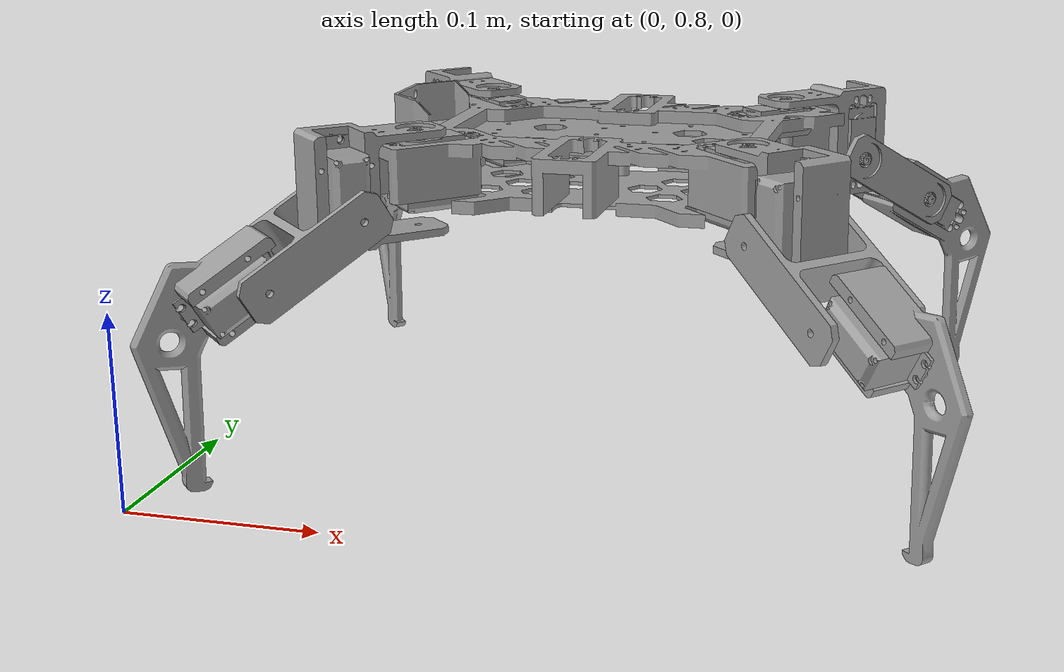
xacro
<?xml version="1.0"?>
<robot xmlns:xacro="http://www.ros.org/wiki/xacro" name="MAGI_Assembly_URDF">

  <!-- Materials (shared across all assemblies) -->
  <material name="Steel">
    <color rgba="0.627 0.627 0.627 1.0"/>
  </material>

  <!-- Assembly includes -->
  <xacro:include filename="$(find MAGI_Assembly_URDF_description)/urdf/assemblies/MAGI_Assembly_URDF.urdf.xacro"/>

  <!-- Instantiate assemblies -->
  <xacro:MAGI_Assembly_URDF prefix=""/>

</robot>

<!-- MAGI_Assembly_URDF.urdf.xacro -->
<robot xmlns:xacro="http://www.ros.org/wiki/xacro" name="MAGI_Assembly_URDF_macro">

  <xacro:macro name="MAGI_Assembly_URDF" params="prefix">

    <!-- Links -->
    <link name="${prefix}base_link">
      <inertial>
        <origin xyz="0.188950 1.012566 0.124814" rpy="0 0 0"/>
        <mass value="0.461432"/>
        <inertia ixx="7.929840e-04" ixy="8.295237e-08" ixz="1.419208e-06"
                 iyy="1.825252e-03" iyz="-2.865923e-08" izz="2.601024e-03"/>
      </inertial>
      <visual>
        <origin xyz="0.000000 0.000000 0.000000" rpy="0.000000 0.000000 0.000000"/>
        <geometry>
          <mesh filename="package://MAGI_Assembly_URDF_description/meshes/MAGI_Assembly_URDF/base_link.dae" scale="1 1 1"/>
        </geometry>
        <material name="Steel"/>
      </visual>
      <collision>
        <origin xyz="0.000000 0.000000 0.000000" rpy="0.000000 0.000000 0.000000"/>
        <geometry>
          <mesh filename="package://MAGI_Assembly_URDF_description/meshes/MAGI_Assembly_URDF/base_link_collision.stl" scale="0.01 0.01 0.01"/>
        </geometry>
      </collision>
    </link>

    <link name="${prefix}HexapodV3Mid">
      <inertial>
        <origin xyz="0.056935 -0.338657 0.392833" rpy="0 0 0"/>
        <mass value="0.430715"/>
        <inertia ixx="3.691505e-04" ixy="9.189307e-07" ixz="3.260568e-05"
                 iyy="1.624727e-03" iyz="1.642784e-08" izz="1.982639e-03"/>
      </inertial>
      <visual>
        <origin xyz="0.000000 0.000000 0.000000" rpy="0.000000 0.000000 0.000000"/>
        <geometry>
          <mesh filename="package://MAGI_Assembly_URDF_description/meshes/MAGI_Assembly_URDF/HexapodV3Mid.dae" scale="1 1 1"/>
        </geometry>
        <material name="Steel"/>
      </visual>
      <collision>
        <origin xyz="0.000000 0.000000 0.000000" rpy="0.000000 0.000000 0.000000"/>
        <geometry>
          <mesh filename="package://MAGI_Assembly_URDF_description/meshes/MAGI_Assembly_URDF/HexapodV3Mid_collision.stl" scale="0.01 0.01 0.01"/>
        </geometry>
      </collision>
    </link>

    <link name="${prefix}HexapodV3Top">
      <inertial>
        <origin xyz="0.148577 2.513000 0.237965" rpy="0 0 0"/>
        <mass value="1.329055"/>
        <inertia ixx="5.538158e-03" ixy="1.518249e-06" ixz="8.338057e-06"
                 iyy="6.473322e-03" iyz="-5.310300e-07" izz="1.181787e-02"/>
      </inertial>
      <visual>
        <origin xyz="0.000000 0.000000 0.000000" rpy="0.000000 0.000000 0.000000"/>
        <geometry>
          <mesh filename="package://MAGI_Assembly_URDF_description/meshes/MAGI_Assembly_URDF/HexapodV3Top.dae" scale="1 1 1"/>
        </geometry>
        <material name="Steel"/>
      </visual>
      <collision>
        <origin xyz="0.000000 0.000000 0.000000" rpy="0.000000 0.000000 0.000000"/>
        <geometry>
          <mesh filename="package://MAGI_Assembly_URDF_description/meshes/MAGI_Assembly_URDF/HexapodV3Top_collision.stl" scale="0.01 0.01 0.01"/>
        </geometry>
      </collision>
    </link>

    <link name="${prefix}MAGI_Assembly_URDF_MG996R_servo">
      <inertial>
        <origin xyz="0.020183 0.019509 0.000018" rpy="0 0 0"/>
        <mass value="0.240073"/>
        <inertia ixx="3.608015e-05" ixy="6.266312e-07" ixz="4.838323e-08"
                 iyy="4.048873e-05" iyz="-8.607661e-08" izz="6.116593e-05"/>
      </inertial>
      <visual>
        <origin xyz="0.000000 0.000000 0.000000" rpy="0.000000 0.000000 0.000000"/>
        <geometry>
          <mesh filename="package://MAGI_Assembly_URDF_description/meshes/MAGI_Assembly_URDF/MAGI_Assembly_URDF_MG996R_servo.dae" scale="1 1 1"/>
        </geometry>
        <material name="Steel"/>
      </visual>
      <collision>
        <origin xyz="0.000000 0.000000 0.000000" rpy="0.000000 0.000000 0.000000"/>
        <geometry>
          <mesh filename="package://MAGI_Assembly_URDF_description/meshes/MAGI_Assembly_URDF/MAGI_Assembly_URDF_MG996R_servo_collision.stl" scale="0.01 0.01 0.01"/>
        </geometry>
      </collision>
    </link>

    <link name="${prefix}MAGI_Assembly_URDF_MG996R_servo_9">
      <inertial>
        <origin xyz="0.020183 0.019509 0.000018" rpy="0 0 0"/>
        <mass value="0.240073"/>
        <inertia ixx="3.608015e-05" ixy="6.266312e-07" ixz="4.838323e-08"
                 iyy="4.048873e-05" iyz="-8.607661e-08" izz="6.116593e-05"/>
      </inertial>
      <visual>
        <origin xyz="0.000000 0.000000 0.000000" rpy="0.000000 0.000000 0.000000"/>
        <geometry>
          <mesh filename="package://MAGI_Assembly_URDF_description/meshes/MAGI_Assembly_URDF/MAGI_Assembly_URDF_MG996R_servo_9.dae" scale="1 1 1"/>
        </geometry>
        <material name="Steel"/>
      </visual>
      <collision>
        <origin xyz="0.000000 0.000000 0.000000" rpy="0.000000 0.000000 0.000000"/>
        <geometry>
          <mesh filename="package://MAGI_Assembly_URDF_description/meshes/MAGI_Assembly_URDF/MAGI_Assembly_URDF_MG996R_servo_9_collision.stl" scale="0.01 0.01 0.01"/>
        </geometry>
      </collision>
    </link>

    <link name="${prefix}MAGI_Assembly_URDF_MG996R_servo_12">
      <inertial>
        <origin xyz="0.020183 0.019509 0.000018" rpy="0 0 0"/>
        <mass value="0.240073"/>
        <inertia ixx="3.608015e-05" ixy="6.266312e-07" ixz="4.838323e-08"
                 iyy="4.048873e-05" iyz="-8.607661e-08" izz="6.116593e-05"/>
      </inertial>
      <visual>
        <origin xyz="0.000000 0.000000 0.000000" rpy="0.000000 0.000000 0.000000"/>
        <geometry>
          <mesh filename="package://MAGI_Assembly_URDF_description/meshes/MAGI_Assembly_URDF/MAGI_Assembly_URDF_MG996R_servo_12.dae" scale="1 1 1"/>
        </geometry>
        <material name="Steel"/>
      </visual>
      <collision>
        <origin xyz="0.000000 0.000000 0.000000" rpy="0.000000 0.000000 0.000000"/>
        <geometry>
          <mesh filename="package://MAGI_Assembly_URDF_description/meshes/MAGI_Assembly_URDF/MAGI_Assembly_URDF_MG996R_servo_12_collision.stl" scale="0.01 0.01 0.01"/>
        </geometry>
      </collision>
    </link>

    <link name="${prefix}MAGI_Assembly_URDF_MG996R_servo_4">
      <inertial>
        <origin xyz="0.020183 0.019509 0.000018" rpy="0 0 0"/>
        <mass value="0.240073"/>
        <inertia ixx="3.608015e-05" ixy="6.266312e-07" ixz="4.838323e-08"
                 iyy="4.048873e-05" iyz="-8.607661e-08" izz="6.116593e-05"/>
      </inertial>
      <visual>
        <origin xyz="0.000000 0.000000 0.000000" rpy="0.000000 0.000000 0.000000"/>
        <geometry>
          <mesh filename="package://MAGI_Assembly_URDF_description/meshes/MAGI_Assembly_URDF/MAGI_Assembly_URDF_MG996R_servo_4.dae" scale="1 1 1"/>
        </geometry>
        <material name="Steel"/>
      </visual>
      <collision>
        <origin xyz="0.000000 0.000000 0.000000" rpy="0.000000 0.000000 0.000000"/>
        <geometry>
          <mesh filename="package://MAGI_Assembly_URDF_description/meshes/MAGI_Assembly_URDF/MAGI_Assembly_URDF_MG996R_servo_4_collision.stl" scale="0.01 0.01 0.01"/>
        </geometry>
      </collision>
    </link>

    <link name="${prefix}MAGI_Assembly_URDF_HQpod_Coxal_Left_v2">
      <inertial>
        <origin xyz="-0.309800 -0.274957 -0.553507" rpy="0 0 0"/>
        <mass value="0.265679"/>
        <inertia ixx="1.676891e-04" ixy="-4.194241e-05" ixz="3.288760e-06"
                 iyy="1.732416e-04" iyz="3.476433e-06" izz="1.224355e-04"/>
      </inertial>
      <visual>
        <origin xyz="-0.790240 -0.541641 0.101007" rpy="0.538487 1.570783 -0.261799"/>
        <geometry>
          <mesh filename="package://MAGI_Assembly_URDF_description/meshes/MAGI_Assembly_URDF/MAGI_Assembly_URDF_HQpod_Coxal_Left_v2.dae" scale="1 1 1"/>
        </geometry>
        <material name="Steel"/>
      </visual>
      <collision>
        <origin xyz="-0.790240 -0.541641 0.101007" rpy="0.538487 1.570783 -0.261799"/>
        <geometry>
          <mesh filename="package://MAGI_Assembly_URDF_description/meshes/MAGI_Assembly_URDF/MAGI_Assembly_URDF_HQpod_Coxal_Left_v2_collision.stl" scale="0.01 0.01 0.01"/>
        </geometry>
      </collision>
    </link>

    <link name="${prefix}MAGI_Assembly_URDF_HQpod_Coxal_Left_v2_2">
      <inertial>
        <origin xyz="0.407835 0.370113 -0.379153" rpy="0 0 0"/>
        <mass value="0.265679"/>
        <inertia ixx="1.676891e-04" ixy="-4.194241e-05" ixz="-3.288760e-06"
                 iyy="1.732416e-04" iyz="-3.476433e-06" izz="1.224355e-04"/>
      </inertial>
      <visual>
        <origin xyz="0.888275 0.636796 0.275360" rpy="0.538487 1.570783 2.879793"/>
        <geometry>
          <mesh filename="package://MAGI_Assembly_URDF_description/meshes/MAGI_Assembly_URDF/MAGI_Assembly_URDF_HQpod_Coxal_Left_v2_2.dae" scale="1 1 1"/>
        </geometry>
        <material name="Steel"/>
      </visual>
      <collision>
        <origin xyz="0.888275 0.636796 0.275360" rpy="0.538487 1.570783 2.879793"/>
        <geometry>
          <mesh filename="package://MAGI_Assembly_URDF_description/meshes/MAGI_Assembly_URDF/MAGI_Assembly_URDF_HQpod_Coxal_Left_v2_2_collision.stl" scale="0.01 0.01 0.01"/>
        </geometry>
      </collision>
    </link>

    <link name="${prefix}MAGI_Assembly_URDF_HQpod_Coxal_Right_v2_2">
      <inertial>
        <origin xyz="-0.820262 0.812012 -0.381004" rpy="0 0 0"/>
        <mass value="0.265916"/>
        <inertia ixx="1.696096e-04" ixy="4.237533e-05" ixz="-4.544269e-06"
                 iyy="1.767587e-04" iyz="4.062247e-06" izz="1.236173e-04"/>
      </inertial>
      <visual>
        <origin xyz="-0.569557 0.769954 0.275480" rpy="-1.154975 1.570793 2.792527"/>
        <geometry>
          <mesh filename="package://MAGI_Assembly_URDF_description/meshes/MAGI_Assembly_URDF/MAGI_Assembly_URDF_HQpod_Coxal_Right_v2_2.dae" scale="1 1 1"/>
        </geometry>
        <material name="Steel"/>
      </visual>
      <collision>
        <origin xyz="-0.569557 0.769954 0.275480" rpy="-1.154975 1.570793 2.792527"/>
        <geometry>
          <mesh filename="package://MAGI_Assembly_URDF_description/meshes/MAGI_Assembly_URDF/MAGI_Assembly_URDF_HQpod_Coxal_Right_v2_2_collision.stl" scale="0.01 0.01 0.01"/>
        </geometry>
      </collision>
    </link>

    <link name="${prefix}MAGI_Assembly_URDF_HQpod_Coxal_Right_v2">
      <inertial>
        <origin xyz="0.918919 -0.906703 -0.555651" rpy="0 0 0"/>
        <mass value="0.265916"/>
        <inertia ixx="1.696096e-04" ixy="4.237533e-05" ixz="4.544269e-06"
                 iyy="1.767587e-04" iyz="-4.062247e-06" izz="1.236173e-04"/>
      </inertial>
      <visual>
        <origin xyz="0.668215 -0.864645 0.100833" rpy="-1.154975 1.570793 -0.349066"/>
        <geometry>
          <mesh filename="package://MAGI_Assembly_URDF_description/meshes/MAGI_Assembly_URDF/MAGI_Assembly_URDF_HQpod_Coxal_Right_v2.dae" scale="1 1 1"/>
        </geometry>
        <material name="Steel"/>
      </visual>
      <collision>
        <origin xyz="0.668215 -0.864645 0.100833" rpy="-1.154975 1.570793 -0.349066"/>
        <geometry>
          <mesh filename="package://MAGI_Assembly_URDF_description/meshes/MAGI_Assembly_URDF/MAGI_Assembly_URDF_HQpod_Coxal_Right_v2_collision.stl" scale="0.01 0.01 0.01"/>
        </geometry>
      </collision>
    </link>

    <link name="${prefix}MAGI_Assembly_URDF_MG996R_servo_7">
      <inertial>
        <origin xyz="0.020183 0.019509 0.000018" rpy="0 0 0"/>
        <mass value="0.240073"/>
        <inertia ixx="3.608015e-05" ixy="6.266312e-07" ixz="4.838323e-08"
                 iyy="4.048873e-05" iyz="-8.607661e-08" izz="6.116593e-05"/>
      </inertial>
      <visual>
        <origin xyz="0.000000 0.000000 0.000000" rpy="0.000000 0.000000 0.000000"/>
        <geometry>
          <mesh filename="package://MAGI_Assembly_URDF_description/meshes/MAGI_Assembly_URDF/MAGI_Assembly_URDF_MG996R_servo_7.dae" scale="1 1 1"/>
        </geometry>
        <material name="Steel"/>
      </visual>
      <collision>
        <origin xyz="0.000000 0.000000 0.000000" rpy="0.000000 0.000000 0.000000"/>
        <geometry>
          <mesh filename="package://MAGI_Assembly_URDF_description/meshes/MAGI_Assembly_URDF/MAGI_Assembly_URDF_MG996R_servo_7_collision.stl" scale="0.01 0.01 0.01"/>
        </geometry>
      </collision>
    </link>

    <link name="${prefix}MAGI_Assembly_URDF_MG996R_servo_10">
      <inertial>
        <origin xyz="0.020183 0.019509 0.000018" rpy="0 0 0"/>
        <mass value="0.240073"/>
        <inertia ixx="3.608015e-05" ixy="6.266312e-07" ixz="4.838323e-08"
                 iyy="4.048873e-05" iyz="-8.607661e-08" izz="6.116593e-05"/>
      </inertial>
      <visual>
        <origin xyz="0.000000 0.000000 0.000000" rpy="0.000000 0.000000 0.000000"/>
        <geometry>
          <mesh filename="package://MAGI_Assembly_URDF_description/meshes/MAGI_Assembly_URDF/MAGI_Assembly_URDF_MG996R_servo_10.dae" scale="1 1 1"/>
        </geometry>
        <material name="Steel"/>
      </visual>
      <collision>
        <origin xyz="0.000000 0.000000 0.000000" rpy="0.000000 0.000000 0.000000"/>
        <geometry>
          <mesh filename="package://MAGI_Assembly_URDF_description/meshes/MAGI_Assembly_URDF/MAGI_Assembly_URDF_MG996R_servo_10_collision.stl" scale="0.01 0.01 0.01"/>
        </geometry>
      </collision>
    </link>

    <link name="${prefix}MAGI_Assembly_URDF_MG996R_servo_5">
      <inertial>
        <origin xyz="0.020183 0.019509 0.000018" rpy="0 0 0"/>
        <mass value="0.240073"/>
        <inertia ixx="3.608015e-05" ixy="6.266312e-07" ixz="4.838323e-08"
                 iyy="4.048873e-05" iyz="-8.607661e-08" izz="6.116593e-05"/>
      </inertial>
      <visual>
        <origin xyz="0.000000 0.000000 0.000000" rpy="0.000000 0.000000 0.000000"/>
        <geometry>
          <mesh filename="package://MAGI_Assembly_URDF_description/meshes/MAGI_Assembly_URDF/MAGI_Assembly_URDF_MG996R_servo_5.dae" scale="1 1 1"/>
        </geometry>
        <material name="Steel"/>
      </visual>
      <collision>
        <origin xyz="0.000000 0.000000 0.000000" rpy="0.000000 0.000000 0.000000"/>
        <geometry>
          <mesh filename="package://MAGI_Assembly_URDF_description/meshes/MAGI_Assembly_URDF/MAGI_Assembly_URDF_MG996R_servo_5_collision.stl" scale="0.01 0.01 0.01"/>
        </geometry>
      </collision>
    </link>

    <link name="${prefix}MAGI_Assembly_URDF_MG996R_servo_3">
      <inertial>
        <origin xyz="0.020183 0.019509 0.000018" rpy="0 0 0"/>
        <mass value="0.240073"/>
        <inertia ixx="3.608015e-05" ixy="6.266312e-07" ixz="4.838323e-08"
                 iyy="4.048873e-05" iyz="-8.607661e-08" izz="6.116593e-05"/>
      </inertial>
      <visual>
        <origin xyz="0.000000 0.000000 0.000000" rpy="0.000000 0.000000 0.000000"/>
        <geometry>
          <mesh filename="package://MAGI_Assembly_URDF_description/meshes/MAGI_Assembly_URDF/MAGI_Assembly_URDF_MG996R_servo_3.dae" scale="1 1 1"/>
        </geometry>
        <material name="Steel"/>
      </visual>
      <collision>
        <origin xyz="0.000000 0.000000 0.000000" rpy="0.000000 0.000000 0.000000"/>
        <geometry>
          <mesh filename="package://MAGI_Assembly_URDF_description/meshes/MAGI_Assembly_URDF/MAGI_Assembly_URDF_MG996R_servo_3_collision.stl" scale="0.01 0.01 0.01"/>
        </geometry>
      </collision>
    </link>

    <link name="${prefix}MAGI_Assembly_URDF_HQpod_Femur">
      <inertial>
        <origin xyz="-0.471069 -0.056915 0.403484" rpy="0 0 0"/>
        <mass value="0.175899"/>
        <inertia ixx="1.183024e-04" ixy="2.456645e-05" ixz="2.454876e-08"
                 iyy="1.467091e-04" iyz="7.559260e-09" izz="7.700635e-05"/>
      </inertial>
      <visual>
        <origin xyz="-0.512382 -0.773114 -0.127693" rpy="0.000000 0.000000 -0.523618"/>
        <geometry>
          <mesh filename="package://MAGI_Assembly_URDF_description/meshes/MAGI_Assembly_URDF/MAGI_Assembly_URDF_HQpod_Femur.dae" scale="1 1 1"/>
        </geometry>
        <material name="Steel"/>
      </visual>
      <collision>
        <origin xyz="-0.512382 -0.773114 -0.127693" rpy="0.000000 0.000000 -0.523618"/>
        <geometry>
          <mesh filename="package://MAGI_Assembly_URDF_description/meshes/MAGI_Assembly_URDF/MAGI_Assembly_URDF_HQpod_Femur_collision.stl" scale="0.01 0.01 0.01"/>
        </geometry>
      </collision>
    </link>

    <link name="${prefix}MAGI_Assembly_URDF_HQpod_Femur_2">
      <inertial>
        <origin xyz="-0.784904 -0.077019 0.403582" rpy="0 0 0"/>
        <mass value="0.175899"/>
        <inertia ixx="1.183024e-04" ixy="2.456645e-05" ixz="2.454876e-08"
                 iyy="1.467091e-04" iyz="7.559260e-09" izz="7.700635e-05"/>
      </inertial>
      <visual>
        <origin xyz="-0.826216 -0.793218 -0.127595" rpy="0.000000 0.000000 -0.523618"/>
        <geometry>
          <mesh filename="package://MAGI_Assembly_URDF_description/meshes/MAGI_Assembly_URDF/MAGI_Assembly_URDF_HQpod_Femur_2.dae" scale="1 1 1"/>
        </geometry>
        <material name="Steel"/>
      </visual>
      <collision>
        <origin xyz="-0.826216 -0.793218 -0.127595" rpy="0.000000 0.000000 -0.523618"/>
        <geometry>
          <mesh filename="package://MAGI_Assembly_URDF_description/meshes/MAGI_Assembly_URDF/MAGI_Assembly_URDF_HQpod_Femur_2_collision.stl" scale="0.01 0.01 0.01"/>
        </geometry>
      </collision>
    </link>

    <link name="${prefix}MAGI_Assembly_URDF_HQpod_Femur_4">
      <inertial>
        <origin xyz="-0.413357 -0.567581 0.404129" rpy="0 0 0"/>
        <mass value="0.175899"/>
        <inertia ixx="1.183335e-04" ixy="-2.458437e-05" ixz="5.727264e-09"
                 iyy="1.466781e-04" iyz="2.503962e-08" izz="7.700635e-05"/>
      </inertial>
      <visual>
        <origin xyz="0.186243 -0.961443 -0.127048" rpy="0.000000 0.000000 0.523604"/>
        <geometry>
          <mesh filename="package://MAGI_Assembly_URDF_description/meshes/MAGI_Assembly_URDF/MAGI_Assembly_URDF_HQpod_Femur_4.dae" scale="1 1 1"/>
        </geometry>
        <material name="Steel"/>
      </visual>
      <collision>
        <origin xyz="0.186243 -0.961443 -0.127048" rpy="0.000000 0.000000 0.523604"/>
        <geometry>
          <mesh filename="package://MAGI_Assembly_URDF_description/meshes/MAGI_Assembly_URDF/MAGI_Assembly_URDF_HQpod_Femur_4_collision.stl" scale="0.01 0.01 0.01"/>
        </geometry>
      </collision>
    </link>

    <link name="${prefix}MAGI_Assembly_URDF_HQpod_Femur_3">
      <inertial>
        <origin xyz="0.099264 0.586456 0.404164" rpy="0 0 0"/>
        <mass value="0.175899"/>
        <inertia ixx="1.183335e-04" ixy="-2.458437e-05" ixz="-5.727264e-09"
                 iyy="1.466781e-04" iyz="-2.503962e-08" izz="7.700635e-05"/>
      </inertial>
      <visual>
        <origin xyz="-0.500337 0.980318 -0.127013" rpy="0.000000 0.000000 -2.617989"/>
        <geometry>
          <mesh filename="package://MAGI_Assembly_URDF_description/meshes/MAGI_Assembly_URDF/MAGI_Assembly_URDF_HQpod_Femur_3.dae" scale="1 1 1"/>
        </geometry>
        <material name="Steel"/>
      </visual>
      <collision>
        <origin xyz="-0.500337 0.980318 -0.127013" rpy="0.000000 0.000000 -2.617989"/>
        <geometry>
          <mesh filename="package://MAGI_Assembly_URDF_description/meshes/MAGI_Assembly_URDF/MAGI_Assembly_URDF_HQpod_Femur_3_collision.stl" scale="0.01 0.01 0.01"/>
        </geometry>
      </collision>
    </link>

    <link name="${prefix}MAGI_Assembly_URDF_MG996R_servo_8">
      <inertial>
        <origin xyz="-0.048599 -0.085491 -0.870965" rpy="0 0 0"/>
        <mass value="0.240073"/>
        <inertia ixx="4.231010e-05" ixy="1.083851e-05" ixz="-5.857124e-07"
                 iyy="5.493598e-05" iyz="2.387821e-07" izz="4.048873e-05"/>
      </inertial>
      <visual>
        <origin xyz="-0.031129 -0.095598 -0.890475" rpy="1.570796 0.000000 2.617975"/>
        <geometry>
          <mesh filename="package://MAGI_Assembly_URDF_description/meshes/MAGI_Assembly_URDF/MAGI_Assembly_URDF_MG996R_servo_8.dae" scale="1 1 1"/>
        </geometry>
        <material name="Steel"/>
      </visual>
      <collision>
        <origin xyz="-0.031129 -0.095598 -0.890475" rpy="1.570796 0.000000 2.617975"/>
        <geometry>
          <mesh filename="package://MAGI_Assembly_URDF_description/meshes/MAGI_Assembly_URDF/MAGI_Assembly_URDF_MG996R_servo_8_collision.stl" scale="0.01 0.01 0.01"/>
        </geometry>
      </collision>
    </link>

    <link name="${prefix}MAGI_Assembly_URDF_MG996R_servo_11">
      <inertial>
        <origin xyz="-0.241021 0.252597 -1.115805" rpy="0 0 0"/>
        <mass value="0.240073"/>
        <inertia ixx="4.231010e-05" ixy="1.083851e-05" ixz="5.857124e-07"
                 iyy="5.493598e-05" iyz="-2.387821e-07" izz="4.048873e-05"/>
      </inertial>
      <visual>
        <origin xyz="-0.258491 0.262704 -1.135315" rpy="1.570796 0.000000 -0.523618"/>
        <geometry>
          <mesh filename="package://MAGI_Assembly_URDF_description/meshes/MAGI_Assembly_URDF/MAGI_Assembly_URDF_MG996R_servo_11.dae" scale="1 1 1"/>
        </geometry>
        <material name="Steel"/>
      </visual>
      <collision>
        <origin xyz="-0.258491 0.262704 -1.135315" rpy="1.570796 0.000000 -0.523618"/>
        <geometry>
          <mesh filename="package://MAGI_Assembly_URDF_description/meshes/MAGI_Assembly_URDF/MAGI_Assembly_URDF_MG996R_servo_11_collision.stl" scale="0.01 0.01 0.01"/>
        </geometry>
      </collision>
    </link>

    <link name="${prefix}MAGI_Assembly_URDF_MG996R_servo_6">
      <inertial>
        <origin xyz="-0.339779 -0.083169 -0.871127" rpy="0 0 0"/>
        <mass value="0.240073"/>
        <inertia ixx="4.239361e-05" ixy="-1.088672e-05" ixz="4.996382e-07"
                 iyy="5.485247e-05" iyz="3.878628e-07" izz="4.048873e-05"/>
      </inertial>
      <visual>
        <origin xyz="-0.357267 -0.093245 -0.890636" rpy="1.570796 0.000000 0.523604"/>
        <geometry>
          <mesh filename="package://MAGI_Assembly_URDF_description/meshes/MAGI_Assembly_URDF/MAGI_Assembly_URDF_MG996R_servo_6.dae" scale="1 1 1"/>
        </geometry>
        <material name="Steel"/>
      </visual>
      <collision>
        <origin xyz="-0.357267 -0.093245 -0.890636" rpy="1.570796 0.000000 0.523604"/>
        <geometry>
          <mesh filename="package://MAGI_Assembly_URDF_description/meshes/MAGI_Assembly_URDF/MAGI_Assembly_URDF_MG996R_servo_6_collision.stl" scale="0.01 0.01 0.01"/>
        </geometry>
      </collision>
    </link>

    <link name="${prefix}MAGI_Assembly_URDF_MG996R_servo_2">
      <inertial>
        <origin xyz="0.048992 -0.084679 -1.114757" rpy="0 0 0"/>
        <mass value="0.240073"/>
        <inertia ixx="4.239361e-05" ixy="-1.088672e-05" ixz="-4.996382e-07"
                 iyy="5.485247e-05" iyz="-3.878628e-07" izz="4.048873e-05"/>
      </inertial>
      <visual>
        <origin xyz="0.066480 -0.074603 -1.134266" rpy="1.570796 0.000000 -2.617989"/>
        <geometry>
          <mesh filename="package://MAGI_Assembly_URDF_description/meshes/MAGI_Assembly_URDF/MAGI_Assembly_URDF_MG996R_servo_2.dae" scale="1 1 1"/>
        </geometry>
        <material name="Steel"/>
      </visual>
      <collision>
        <origin xyz="0.066480 -0.074603 -1.134266" rpy="1.570796 0.000000 -2.617989"/>
        <geometry>
          <mesh filename="package://MAGI_Assembly_URDF_description/meshes/MAGI_Assembly_URDF/MAGI_Assembly_URDF_MG996R_servo_2_collision.stl" scale="0.01 0.01 0.01"/>
        </geometry>
      </collision>
    </link>

    <link name="${prefix}MAGI_Assembly_URDF_HQpod_Tibia_Left">
      <inertial>
        <origin xyz="0.000000 0.000000 0.000000" rpy="0 0 0"/>
        <mass value="0.001000"/>
        <inertia ixx="1.000000e-06" ixy="0.000000e+00" ixz="0.000000e+00"
                 iyy="1.000000e-06" iyz="0.000000e+00" izz="1.000000e-06"/>
      </inertial>
      <visual>
        <origin xyz="0.000000 0.000000 0.000000" rpy="0.000000 0.000000 0.000000"/>
        <geometry>
          <mesh filename="package://MAGI_Assembly_URDF_description/meshes/MAGI_Assembly_URDF/MAGI_Assembly_URDF_HQpod_Tibia_Left.dae" scale="1 1 1"/>
        </geometry>
        <material name="Steel"/>
      </visual>
      <collision>
        <origin xyz="0.000000 0.000000 0.000000" rpy="0.000000 0.000000 0.000000"/>
        <geometry>
          <mesh filename="package://MAGI_Assembly_URDF_description/meshes/MAGI_Assembly_URDF/MAGI_Assembly_URDF_HQpod_Tibia_Left_collision.stl" scale="0.01 0.01 0.01"/>
        </geometry>
      </collision>
    </link>

    <link name="${prefix}MAGI_Assembly_URDF_HQpod_Tibia_Left_2">
      <inertial>
        <origin xyz="0.000000 0.000000 0.000000" rpy="0 0 0"/>
        <mass value="0.001000"/>
        <inertia ixx="1.000000e-06" ixy="0.000000e+00" ixz="0.000000e+00"
                 iyy="1.000000e-06" iyz="0.000000e+00" izz="1.000000e-06"/>
      </inertial>
      <visual>
        <origin xyz="0.000000 0.000000 0.000000" rpy="0.000000 0.000000 0.000000"/>
        <geometry>
          <mesh filename="package://MAGI_Assembly_URDF_description/meshes/MAGI_Assembly_URDF/MAGI_Assembly_URDF_HQpod_Tibia_Left_2.dae" scale="1 1 1"/>
        </geometry>
        <material name="Steel"/>
      </visual>
      <collision>
        <origin xyz="0.000000 0.000000 0.000000" rpy="0.000000 0.000000 0.000000"/>
        <geometry>
          <mesh filename="package://MAGI_Assembly_URDF_description/meshes/MAGI_Assembly_URDF/MAGI_Assembly_URDF_HQpod_Tibia_Left_2_collision.stl" scale="0.01 0.01 0.01"/>
        </geometry>
      </collision>
    </link>

    <link name="${prefix}MAGI_Assembly_URDF_HQpod_Tibia_Right_2">
      <inertial>
        <origin xyz="0.000000 0.000000 0.000000" rpy="0 0 0"/>
        <mass value="0.001000"/>
        <inertia ixx="1.000000e-06" ixy="0.000000e+00" ixz="0.000000e+00"
                 iyy="1.000000e-06" iyz="0.000000e+00" izz="1.000000e-06"/>
      </inertial>
      <visual>
        <origin xyz="0.000000 0.000000 0.000000" rpy="0.000000 0.000000 0.000000"/>
        <geometry>
          <mesh filename="package://MAGI_Assembly_URDF_description/meshes/MAGI_Assembly_URDF/MAGI_Assembly_URDF_HQpod_Tibia_Right_2.dae" scale="1 1 1"/>
        </geometry>
        <material name="Steel"/>
      </visual>
      <collision>
        <origin xyz="0.000000 0.000000 0.000000" rpy="0.000000 0.000000 0.000000"/>
        <geometry>
          <mesh filename="package://MAGI_Assembly_URDF_description/meshes/MAGI_Assembly_URDF/MAGI_Assembly_URDF_HQpod_Tibia_Right_2_collision.stl" scale="0.01 0.01 0.01"/>
        </geometry>
      </collision>
    </link>

    <link name="${prefix}MAGI_Assembly_URDF_HQpod_Tibia_Right">
      <inertial>
        <origin xyz="0.000000 0.000000 0.000000" rpy="0 0 0"/>
        <mass value="0.001000"/>
        <inertia ixx="1.000000e-06" ixy="0.000000e+00" ixz="0.000000e+00"
                 iyy="1.000000e-06" iyz="0.000000e+00" izz="1.000000e-06"/>
      </inertial>
      <visual>
        <origin xyz="0.000000 0.000000 0.000000" rpy="0.000000 0.000000 0.000000"/>
        <geometry>
          <mesh filename="package://MAGI_Assembly_URDF_description/meshes/MAGI_Assembly_URDF/MAGI_Assembly_URDF_HQpod_Tibia_Right.dae" scale="1 1 1"/>
        </geometry>
        <material name="Steel"/>
      </visual>
      <collision>
        <origin xyz="0.000000 0.000000 0.000000" rpy="0.000000 0.000000 0.000000"/>
        <geometry>
          <mesh filename="package://MAGI_Assembly_URDF_description/meshes/MAGI_Assembly_URDF/MAGI_Assembly_URDF_HQpod_Tibia_Right_collision.stl" scale="0.01 0.01 0.01"/>
        </geometry>
      </collision>
    </link>

    <!-- Joints (internal to assembly) -->
    <joint name="${prefix}Rigid_1" type="fixed">
      <parent link="${prefix}base_link"/>
      <child link="${prefix}HexapodV3Mid"/>
      <origin xyz="0.113207 1.351156 -0.242000" rpy="-0.000000 0.000000 0.000000"/>
    </joint>

    <joint name="${prefix}Rigid_2" type="fixed">
      <parent link="${prefix}HexapodV3Mid"/>
      <child link="${prefix}HexapodV3Top"/>
      <origin xyz="-0.074434 -2.851566 0.152148" rpy="0.000000 0.000000 0.000000"/>
    </joint>

    <joint name="${prefix}Rigid_4" type="fixed">
      <parent link="${prefix}HexapodV3Top"/>
      <child link="${prefix}MAGI_Assembly_URDF_MG996R_servo"/>
      <origin xyz="0.054925 2.437386 0.211602" rpy="1.570796 0.000000 0.785398"/>
    </joint>

    <joint name="${prefix}Rigid_10" type="fixed">
      <parent link="${prefix}HexapodV3Top"/>
      <child link="${prefix}MAGI_Assembly_URDF_MG996R_servo_9"/>
      <origin xyz="0.243915 2.588642 0.211602" rpy="1.570796 0.000000 -2.356194"/>
    </joint>

    <joint name="${prefix}Rigid_17" type="fixed">
      <parent link="${prefix}HexapodV3Top"/>
      <child link="${prefix}MAGI_Assembly_URDF_MG996R_servo_12"/>
      <origin xyz="0.244023 2.437165 0.210956" rpy="1.570796 0.000000 2.356194"/>
    </joint>

    <joint name="${prefix}Rigid_29" type="fixed">
      <parent link="${prefix}HexapodV3Top"/>
      <child link="${prefix}MAGI_Assembly_URDF_MG996R_servo_4"/>
      <origin xyz="0.054739 2.588547 0.210956" rpy="1.570796 0.000000 -0.785398"/>
    </joint>

    <joint name="${prefix}Revolute_5" type="revolute">
      <parent link="${prefix}MAGI_Assembly_URDF_MG996R_servo"/>
      <child link="${prefix}MAGI_Assembly_URDF_HQpod_Coxal_Left_v2"/>
      <origin xyz="0.389152 0.569011 0.023325" rpy="-1.570796 -0.785398 0.000000"/>
      <axis xyz="0.000000 0.000000 1.000000"/>
      <limit lower="-0.593412" upper="1.570796" effort="100.0" velocity="1.00"/>
    </joint>

    <joint name="${prefix}Revolute_12" type="revolute">
      <parent link="${prefix}MAGI_Assembly_URDF_MG996R_servo_9"/>
      <child link="${prefix}MAGI_Assembly_URDF_HQpod_Coxal_Left_v2_2"/>
      <origin xyz="0.525758 0.394657 0.025361" rpy="1.570796 0.785398 -3.141593"/>
      <axis xyz="0.000000 0.000000 1.000000"/>
      <limit lower="-0.383972" upper="1.570796" effort="100.0" velocity="1.00"/>
    </joint>

    <joint name="${prefix}Revolute_31" type="revolute">
      <parent link="${prefix}MAGI_Assembly_URDF_MG996R_servo_12"/>
      <child link="${prefix}MAGI_Assembly_URDF_HQpod_Coxal_Right_v2_2"/>
      <origin xyz="-1.178517 0.396542 0.007343" rpy="1.570796 -0.785398 3.141593"/>
      <axis xyz="0.000000 0.000000 1.000000"/>
      <limit lower="-1.570796" upper="0.383972" effort="100.0" velocity="1.00"/>
    </joint>

    <joint name="${prefix}Revolute_24" type="revolute">
      <parent link="${prefix}MAGI_Assembly_URDF_MG996R_servo_4"/>
      <child link="${prefix}MAGI_Assembly_URDF_HQpod_Coxal_Right_v2"/>
      <origin xyz="-1.315235 0.571189 0.010147" rpy="-1.570796 0.785398 0.000000"/>
      <axis xyz="0.000000 0.000000 1.000000"/>
      <limit lower="-1.570796" upper="0.593412" effort="100.0" velocity="1.00"/>
    </joint>

    <joint name="${prefix}Rigid_6" type="fixed">
      <parent link="${prefix}MAGI_Assembly_URDF_HQpod_Coxal_Left_v2"/>
      <child link="${prefix}MAGI_Assembly_URDF_MG996R_servo_7"/>
      <origin xyz="-0.300345 -0.298625 -0.573417" rpy="-2.077761 -1.570782 2.848271"/>
    </joint>

    <joint name="${prefix}Rigid_13" type="fixed">
      <parent link="${prefix}MAGI_Assembly_URDF_HQpod_Coxal_Left_v2_2"/>
      <child link="${prefix}MAGI_Assembly_URDF_MG996R_servo_10"/>
      <origin xyz="0.398051 0.394361 -0.399161" rpy="-2.077761 -1.570782 -0.293322"/>
    </joint>

    <joint name="${prefix}Rigid_35" type="fixed">
      <parent link="${prefix}MAGI_Assembly_URDF_HQpod_Coxal_Right_v2_2"/>
      <child link="${prefix}MAGI_Assembly_URDF_MG996R_servo_5"/>
      <origin xyz="-0.829584 0.788290 -0.400947" rpy="-0.545389 -1.570792 -0.219497"/>
    </joint>

    <joint name="${prefix}Rigid_25" type="fixed">
      <parent link="${prefix}MAGI_Assembly_URDF_HQpod_Coxal_Right_v2"/>
      <child link="${prefix}MAGI_Assembly_URDF_MG996R_servo_3"/>
      <origin xyz="0.928230 -0.882970 -0.575629" rpy="-0.545389 -1.570792 2.922096"/>
    </joint>

    <joint name="${prefix}Revolute_7" type="revolute">
      <parent link="${prefix}MAGI_Assembly_URDF_MG996R_servo_7"/>
      <child link="${prefix}MAGI_Assembly_URDF_HQpod_Femur"/>
      <origin xyz="-0.061224 -0.389313 -0.445687" rpy="1.570796 1.570777 -3.141593"/>
      <axis xyz="0.000000 0.000000 1.000000"/>
      <limit lower="-1.396263" upper="0.959931" effort="100.0" velocity="1.00"/>
    </joint>

    <joint name="${prefix}Revolute_14" type="revolute">
      <parent link="${prefix}MAGI_Assembly_URDF_MG996R_servo_10"/>
      <child link="${prefix}MAGI_Assembly_URDF_HQpod_Femur_2"/>
      <origin xyz="0.072694 -0.389411 0.810137" rpy="-1.570796 -1.570777 -0.000000"/>
      <axis xyz="0.000000 0.000000 1.000000"/>
      <limit lower="-1.396263" upper="0.959931" effort="100.0" velocity="1.00"/>
    </joint>

    <joint name="${prefix}Revolute_32" type="revolute">
      <parent link="${prefix}MAGI_Assembly_URDF_MG996R_servo_5"/>
      <child link="${prefix}MAGI_Assembly_URDF_HQpod_Femur_4"/>
      <origin xyz="-0.571739 -0.389958 -0.438697" rpy="-1.570796 1.570791 -0.000000"/>
      <axis xyz="0.000000 0.000000 1.000000"/>
      <limit lower="-0.959931" upper="1.396263" effort="100.0" velocity="1.00"/>
    </joint>

    <joint name="${prefix}Revolute_26" type="revolute">
      <parent link="${prefix}MAGI_Assembly_URDF_MG996R_servo_3"/>
      <child link="${prefix}MAGI_Assembly_URDF_HQpod_Femur_3"/>
      <origin xyz="-0.590615 -0.389993 -0.124604" rpy="1.570796 -1.570791 3.141593"/>
      <axis xyz="0.000000 0.000000 1.000000"/>
      <limit lower="-0.959931" upper="1.396263" effort="100.0" velocity="1.00"/>
    </joint>

    <joint name="${prefix}Revolute_8" type="revolute">
      <parent link="${prefix}MAGI_Assembly_URDF_HQpod_Femur"/>
      <child link="${prefix}MAGI_Assembly_URDF_MG996R_servo_8"/>
      <origin xyz="-0.456212 0.048197 1.279788" rpy="0.000000 0.000000 0.000000"/>
      <axis xyz="0.000000 0.000000 1.000000"/>
      <limit lower="-1.570796" upper="1.570796" effort="100.0" velocity="1.00"/>
    </joint>

    <joint name="${prefix}Revolute_15" type="revolute">
      <parent link="${prefix}MAGI_Assembly_URDF_HQpod_Femur_2"/>
      <child link="${prefix}MAGI_Assembly_URDF_MG996R_servo_11"/>
      <origin xyz="-0.509995 -0.349198 1.524726" rpy="0.000000 0.000000 0.000000"/>
      <axis xyz="0.000000 0.000000 1.000000"/>
      <limit lower="-1.570796" upper="1.570796" effort="100.0" velocity="1.00"/>
    </joint>

    <joint name="${prefix}Revolute_33" type="revolute">
      <parent link="${prefix}MAGI_Assembly_URDF_HQpod_Femur_4"/>
      <child link="${prefix}MAGI_Assembly_URDF_MG996R_servo_6"/>
      <origin xyz="-0.039675 -0.464855 1.280594" rpy="0.000000 0.000000 0.000000"/>
      <axis xyz="0.000000 0.000000 1.000000"/>
      <limit lower="-1.570796" upper="1.570796" effort="100.0" velocity="1.00"/>
    </joint>

    <joint name="${prefix}Revolute_27" type="revolute">
      <parent link="${prefix}MAGI_Assembly_URDF_HQpod_Femur_3"/>
      <child link="${prefix}MAGI_Assembly_URDF_MG996R_servo_2"/>
      <origin xyz="0.016368 0.651577 1.524259" rpy="0.000000 0.000000 0.000000"/>
      <axis xyz="0.000000 0.000000 1.000000"/>
      <limit lower="-1.570796" upper="1.570796" effort="100.0" velocity="1.00"/>
    </joint>

    <joint name="${prefix}Rigid_9" type="fixed">
      <parent link="${prefix}MAGI_Assembly_URDF_MG996R_servo_8"/>
      <child link="${prefix}MAGI_Assembly_URDF_HQpod_Tibia_Left"/>
      <origin xyz="0.053166 -0.665761 -0.837464" rpy="3.141593 0.000000 1.047179"/>
    </joint>

    <joint name="${prefix}Rigid_16" type="fixed">
      <parent link="${prefix}MAGI_Assembly_URDF_MG996R_servo_11"/>
      <child link="${prefix}MAGI_Assembly_URDF_HQpod_Tibia_Left_2"/>
      <origin xyz="-0.342786 0.832867 -1.082304" rpy="-3.141593 0.000000 -2.094414"/>
    </joint>

    <joint name="${prefix}Rigid_34" type="fixed">
      <parent link="${prefix}MAGI_Assembly_URDF_MG996R_servo_6"/>
      <child link="${prefix}MAGI_Assembly_URDF_HQpod_Tibia_Right_2"/>
      <origin xyz="-0.017717 -0.899331 -0.724813" rpy="-3.141589 -0.000003 -1.047192"/>
    </joint>

    <joint name="${prefix}Rigid_30" type="fixed">
      <parent link="${prefix}MAGI_Assembly_URDF_MG996R_servo_2"/>
      <child link="${prefix}MAGI_Assembly_URDF_HQpod_Tibia_Right"/>
      <origin xyz="-0.273455 0.731255 -0.968443" rpy="-3.141589 -0.000003 2.094400"/>
    </joint>

    <!-- ROS 2 control: generated generic system -->
    <ros2_control name="${prefix}MAGI_Assembly_URDF_system" type="system">
      <hardware>
        <plugin>mock_components/GenericSystem</plugin>
        <param name="cmd_topic">sim/MAGI_Assembly_URDF_system/cmd</param>
        <param name="state_topic">sim/MAGI_Assembly_URDF_system/state</param>
      </hardware>

      <joint name="${prefix}Revolute_12">
        <command_interface name="position"/>
        <command_interface name="velocity"/>
        <state_interface name="position">
          <param name="initial_value">0.0</param>
        </state_interface>
        <state_interface name="velocity"/>
        <state_interface name="effort"/>
      </joint>
      <joint name="${prefix}Revolute_14">
        <command_interface name="position"/>
        <command_interface name="velocity"/>
        <state_interface name="position">
          <param name="initial_value">0.0</param>
        </state_interface>
        <state_interface name="velocity"/>
        <state_interface name="effort"/>
      </joint>
      <joint name="${prefix}Revolute_15">
        <command_interface name="position"/>
        <command_interface name="velocity"/>
        <state_interface name="position">
          <param name="initial_value">0.0</param>
        </state_interface>
        <state_interface name="velocity"/>
        <state_interface name="effort"/>
      </joint>
      <joint name="${prefix}Revolute_24">
        <command_interface name="position"/>
        <command_interface name="velocity"/>
        <state_interface name="position">
          <param name="initial_value">0.0</param>
        </state_interface>
        <state_interface name="velocity"/>
        <state_interface name="effort"/>
      </joint>
      <joint name="${prefix}Revolute_26">
        <command_interface name="position"/>
        <command_interface name="velocity"/>
        <state_interface name="position">
          <param name="initial_value">0.0</param>
        </state_interface>
        <state_interface name="velocity"/>
        <state_interface name="effort"/>
      </joint>
      <joint name="${prefix}Revolute_27">
        <command_interface name="position"/>
        <command_interface name="velocity"/>
        <state_interface name="position">
          <param name="initial_value">0.0</param>
        </state_interface>
        <state_interface name="velocity"/>
        <state_interface name="effort"/>
      </joint>
      <joint name="${prefix}Revolute_31">
        <command_interface name="position"/>
        <command_interface name="velocity"/>
        <state_interface name="position">
          <param name="initial_value">0.0</param>
        </state_interface>
        <state_interface name="velocity"/>
        <state_interface name="effort"/>
      </joint>
      <joint name="${prefix}Revolute_32">
        <command_interface name="position"/>
        <command_interface name="velocity"/>
        <state_interface name="position">
          <param name="initial_value">0.0</param>
        </state_interface>
        <state_interface name="velocity"/>
        <state_interface name="effort"/>
      </joint>
      <joint name="${prefix}Revolute_33">
        <command_interface name="position"/>
        <command_interface name="velocity"/>
        <state_interface name="position">
          <param name="initial_value">0.0</param>
        </state_interface>
        <state_interface name="velocity"/>
        <state_interface name="effort"/>
      </joint>
      <joint name="${prefix}Revolute_5">
        <command_interface name="position"/>
        <command_interface name="velocity"/>
        <state_interface name="position">
          <param name="initial_value">0.0</param>
        </state_interface>
        <state_interface name="velocity"/>
        <state_interface name="effort"/>
      </joint>
      <joint name="${prefix}Revolute_7">
        <command_interface name="position"/>
        <command_interface name="velocity"/>
        <state_interface name="position">
          <param name="initial_value">0.0</param>
        </state_interface>
        <state_interface name="velocity"/>
        <state_interface name="effort"/>
      </joint>
      <joint name="${prefix}Revolute_8">
        <command_interface name="position"/>
        <command_interface name="velocity"/>
        <state_interface name="position">
          <param name="initial_value">0.0</param>
        </state_interface>
        <state_interface name="velocity"/>
        <state_interface name="effort"/>
      </joint>
    </ros2_control>

  </xacro:macro>

</robot>
